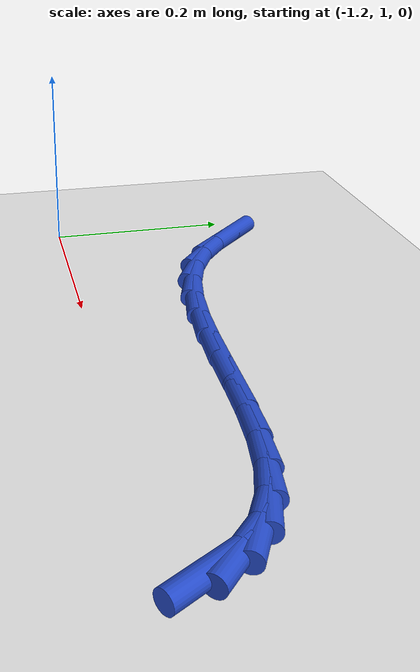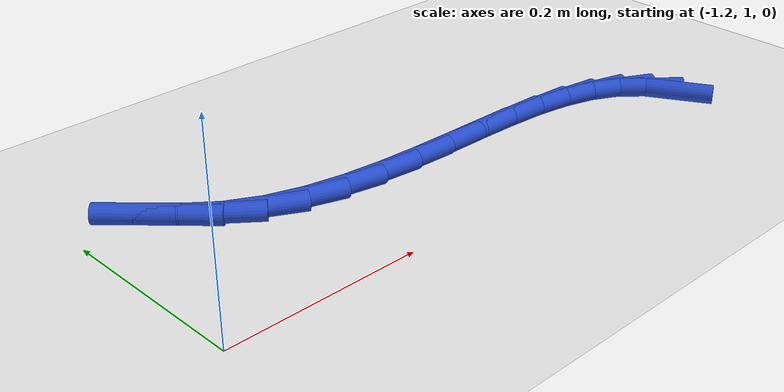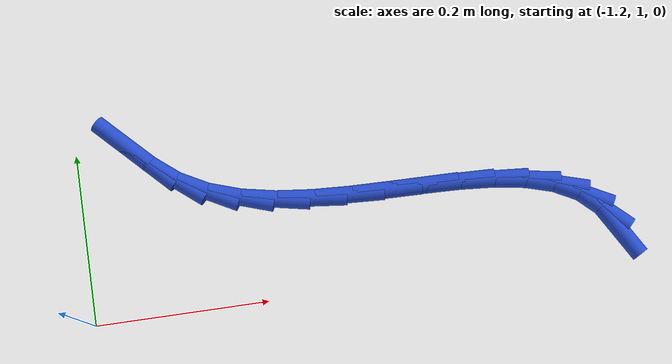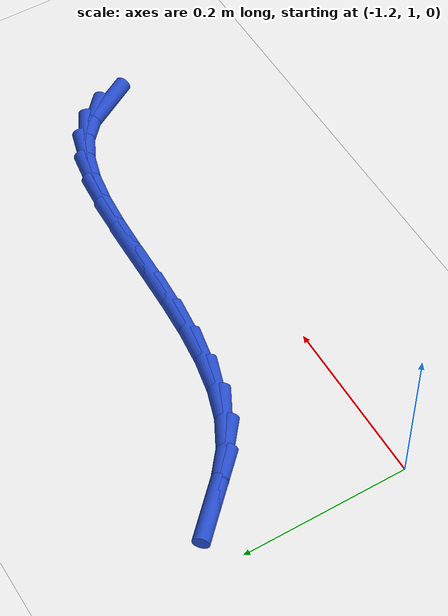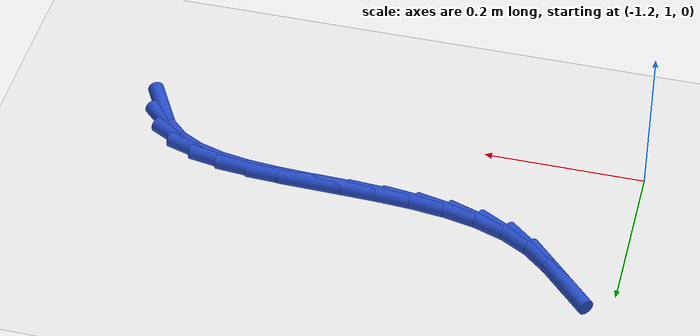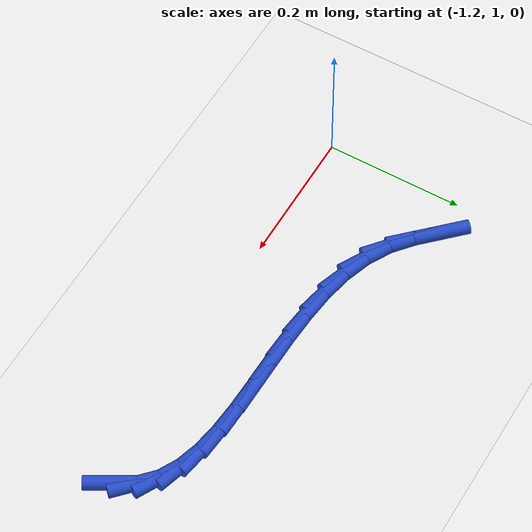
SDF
<sdf version="1.6">
 <world name="default">
  <model name="ground_plane">
   <static>1</static>
   <link name="link">
    <collision name="collision">
     <geometry><plane><normal>0 0 1</normal><size>100 100</size></plane></geometry>
     <surface><friction><ode><mu>100</mu><mu2>50</mu2></ode></friction></surface>
    </collision>
    <visual name="visual">
     <cast_shadows>0</cast_shadows>
     <geometry><plane><normal>0 0 1</normal><size>100 100</size></plane></geometry>
     <material>
      <script><uri>file://media/materials/scripts/gazebo.material</uri><name>Gazebo/WhiteGlow</name></script>
     </material>
    </visual>
   </link>
  </model>
  <model name="line">
   <link name="link_33">
    <pose>-0.5905294058140163 1.0252312954157574 0.01 0 1.57 -1.050968693917539</pose>
    <collision name="collision">
     <geometry><cylinder><radius>0.01</radius><length>0.08</length></cylinder></geometry>
    </collision>
    <visual name="visual">
     <material>
      <script><name>Gazebo/Blue</name><uri>file://media/materials/scripts/gazebo.material</uri></script>
     </material>
     <geometry><cylinder><radius>0.01</radius><length>0.08</length></cylinder></geometry>
    </visual>
   </link>
   <link name="link_34">
    <pose>-0.6057638727901493 1.0518494836597798 0.01 0 1.57 -0.7537559444594807</pose>
    <collision name="collision">
     <geometry><cylinder><radius>0.01</radius><length>0.08</length></cylinder></geometry>
    </collision>
    <visual name="visual">
     <material>
      <script><name>Gazebo/Blue</name><uri>file://media/materials/scripts/gazebo.material</uri></script>
     </material>
     <geometry><cylinder><radius>0.01</radius><length>0.08</length></cylinder></geometry>
    </visual>
   </link>
   <link name="link_35">
    <pose>-0.6272589074992032 1.0720255131921494 0.01 0 1.57 -0.48520055452709066</pose>
    <collision name="collision">
     <geometry><cylinder><radius>0.01</radius><length>0.08</length></cylinder></geometry>
    </collision>
    <visual name="visual">
     <material>
      <script><name>Gazebo/Blue</name><uri>file://media/materials/scripts/gazebo.material</uri></script>
     </material>
     <geometry><cylinder><radius>0.01</radius><length>0.08</length></cylinder></geometry>
    </visual>
   </link>
   <link name="link_36">
    <pose>-0.6545260261993893 1.0864017999386189 0.01 0 1.57 -0.28993866395748036</pose>
    <collision name="collision">
     <geometry><cylinder><radius>0.01</radius><length>0.08</length></cylinder></geometry>
    </collision>
    <visual name="visual">
     <material>
      <script><name>Gazebo/Blue</name><uri>file://media/materials/scripts/gazebo.material</uri></script>
     </material>
     <geometry><cylinder><radius>0.01</radius><length>0.08</length></cylinder></geometry>
    </visual>
   </link>
   <link name="link_37">
    <pose>-0.6866947612168182 1.0959992130268215 0.01 0 1.57 -0.15993244494692524</pose>
    <collision name="collision">
     <geometry><cylinder><radius>0.01</radius><length>0.08</length></cylinder></geometry>
    </collision>
    <visual name="visual">
     <material>
      <script><name>Gazebo/Blue</name><uri>file://media/materials/scripts/gazebo.material</uri></script>
     </material>
     <geometry><cylinder><radius>0.01</radius><length>0.08</length></cylinder></geometry>
    </visual>
   </link>
   <link name="link_38">
    <pose>-0.7228946448776001 1.1018386215843894 0.01 0 1.57 -0.07865418494785999</pose>
    <collision name="collision">
     <geometry><cylinder><radius>0.01</radius><length>0.08</length></cylinder></geometry>
    </collision>
    <visual name="visual">
     <material>
      <script><name>Gazebo/Blue</name><uri>file://media/materials/scripts/gazebo.material</uri></script>
     </material>
     <geometry><cylinder><radius>0.01</radius><length>0.08</length></cylinder></geometry>
    </visual>
   </link>
   <link name="link_39">
    <pose>-0.7622552095078462 1.1049408947389567 0.01 0 1.57 -0.03326457967982787</pose>
    <collision name="collision">
     <geometry><cylinder><radius>0.01</radius><length>0.08</length></cylinder></geometry>
    </collision>
    <visual name="visual">
     <material>
      <script><name>Gazebo/Blue</name><uri>file://media/materials/scripts/gazebo.material</uri></script>
     </material>
     <geometry><cylinder><radius>0.01</radius><length>0.08</length></cylinder></geometry>
    </visual>
   </link>
   <link name="link_40">
    <pose>-0.8039059874336666 1.1063269016181552 0.01 0 1.57 -0.016033019755761532</pose>
    <collision name="collision">
     <geometry><cylinder><radius>0.01</radius><length>0.08</length></cylinder></geometry>
    </collision>
    <visual name="visual">
     <material>
      <script><name>Gazebo/Blue</name><uri>file://media/materials/scripts/gazebo.material</uri></script>
     </material>
     <geometry><cylinder><radius>0.01</radius><length>0.08</length></cylinder></geometry>
    </visual>
   </link>
   <link name="link_41">
    <pose>-0.8469765109811722 1.107017511349619 0.01 0 1.57 -0.02328983527560431</pose>
    <collision name="collision">
     <geometry><cylinder><radius>0.01</radius><length>0.08</length></cylinder></geometry>
    </collision>
    <visual name="visual">
     <material>
      <script><name>Gazebo/Blue</name><uri>file://media/materials/scripts/gazebo.material</uri></script>
     </material>
     <geometry><cylinder><radius>0.01</radius><length>0.08</length></cylinder></geometry>
    </visual>
   </link>
   <link name="link_42">
    <pose>-0.8905963124764729 1.10803359306098 0.01 0 1.57 -0.0545071227931447</pose>
    <collision name="collision">
     <geometry><cylinder><radius>0.01</radius><length>0.08</length></cylinder></geometry>
    </collision>
    <visual name="visual">
     <material>
      <script><name>Gazebo/Blue</name><uri>file://media/materials/scripts/gazebo.material</uri></script>
     </material>
     <geometry><cylinder><radius>0.01</radius><length>0.08</length></cylinder></geometry>
    </visual>
   </link>
   <link name="link_43">
    <pose>-0.9338949242456803 1.1103960158798722 0.01 0 1.57 -0.11185542867054082</pose>
    <collision name="collision">
     <geometry><cylinder><radius>0.01</radius><length>0.08</length></cylinder></geometry>
    </collision>
    <visual name="visual">
     <material>
      <script><name>Gazebo/Blue</name><uri>file://media/materials/scripts/gazebo.material</uri></script>
     </material>
     <geometry><cylinder><radius>0.01</radius><length>0.08</length></cylinder></geometry>
    </visual>
   </link>
   <link name="link_44">
    <pose>-0.9760018786149042 1.1151256489339276 0.01 0 1.57 -0.20000536451096976</pose>
    <collision name="collision">
     <geometry><cylinder><radius>0.01</radius><length>0.08</length></cylinder></geometry>
    </collision>
    <visual name="visual">
     <material>
      <script><name>Gazebo/Blue</name><uri>file://media/materials/scripts/gazebo.material</uri></script>
     </material>
     <geometry><cylinder><radius>0.01</radius><length>0.08</length></cylinder></geometry>
    </visual>
   </link>
   <link name="link_45">
    <pose>-1.0160467079102555 1.12324336135078 0.01 0 1.57 -0.32552684393863046</pose>
    <collision name="collision">
     <geometry><cylinder><radius>0.01</radius><length>0.08</length></cylinder></geometry>
    </collision>
    <visual name="visual">
     <material>
      <script><name>Gazebo/Blue</name><uri>file://media/materials/scripts/gazebo.material</uri></script>
     </material>
     <geometry><cylinder><radius>0.01</radius><length>0.08</length></cylinder></geometry>
    </visual>
   </link>
   <link name="link_46">
    <pose>-1.0531589444578446 1.1357700222580616 0.01 0 1.57 -0.4944245993701567</pose>
    <collision name="collision">
     <geometry><cylinder><radius>0.01</radius><length>0.08</length></cylinder></geometry>
    </collision>
    <visual name="visual">
     <material>
      <script><name>Gazebo/Blue</name><uri>file://media/materials/scripts/gazebo.material</uri></script>
     </material>
     <geometry><cylinder><radius>0.01</radius><length>0.08</length></cylinder></geometry>
    </visual>
   </link>
   <link name="link_47">
    <pose>-1.086468120583782 1.1537265007834059 0.01 0 1.57 -0.6862244633565404</pose>
    <collision name="collision">
     <geometry><cylinder><radius>0.01</radius><length>0.08</length></cylinder></geometry>
    </collision>
    <visual name="visual">
     <material>
      <script><name>Gazebo/Blue</name><uri>file://media/materials/scripts/gazebo.material</uri></script>
     </material>
     <geometry><cylinder><radius>0.01</radius><length>0.08</length></cylinder></geometry>
    </visual>
   </link>
   <link name="link_48">
    <pose>-1.1155477952525485 1.1775429996897178 0.01 0 1.57 -0.794600883487039</pose>
    <collision name="collision">
     <geometry><cylinder><radius>0.01</radius><length>0.08</length></cylinder></geometry>
    </collision>
    <visual name="visual">
     <material>
      <script><name>Gazebo/Blue</name><uri>file://media/materials/scripts/gazebo.material</uri></script>
     </material>
     <geometry><cylinder><radius>0.01</radius><length>0.08</length></cylinder></geometry>
    </visual>
   </link>
   <link name="link_49">
    <pose>-1.1421978610895869 1.204688141743224 0.01 0 1.57 -0.7909723684042106</pose>
    <collision name="collision">
     <geometry><cylinder><radius>0.01</radius><length>0.08</length></cylinder></geometry>
    </collision>
    <visual name="visual">
     <material>
      <script><name>Gazebo/Blue</name><uri>file://media/materials/scripts/gazebo.material</uri></script>
     </material>
     <geometry><cylinder><radius>0.01</radius><length>0.08</length></cylinder></geometry>
    </visual>
   </link>
  </model>
 </world>
</sdf>
